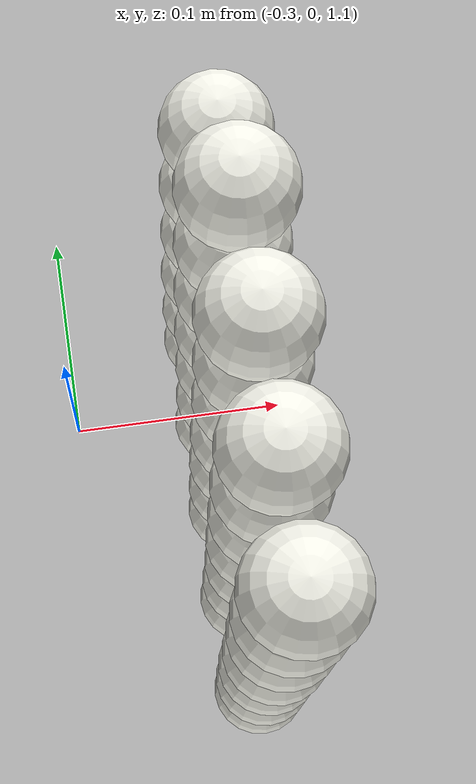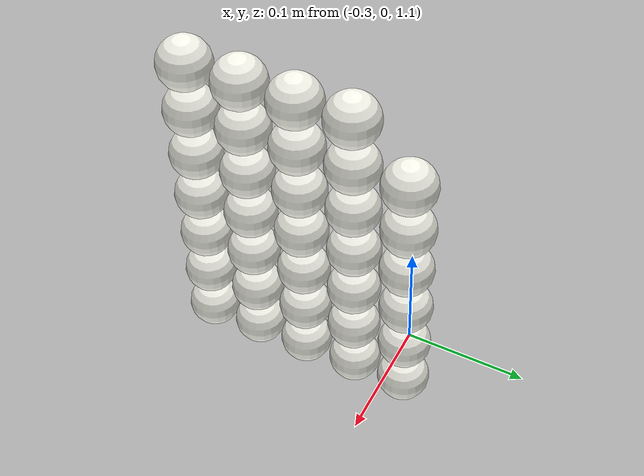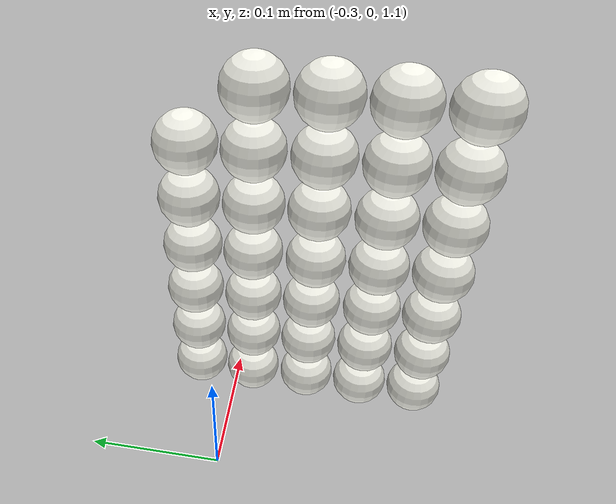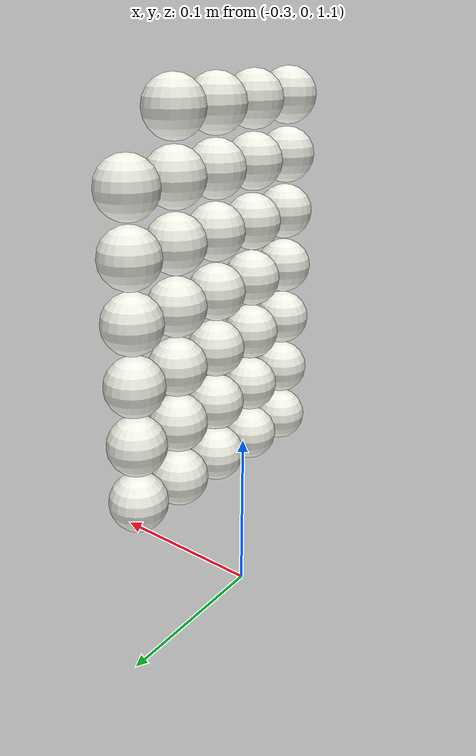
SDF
<sdf version="1.8">
 <world name="physical_100_dt5ms_diagnostic">
  <model name="ground">
   <static>true</static>
   <link name="ground_link">
    <collision name="floor">
     <geometry><plane><normal>0 0 1</normal><size>20 20</size></plane></geometry>
    </collision>
    <visual name="floor_visual">
     <geometry><plane><normal>0 0 1</normal><size>20 20</size></plane></geometry>
     <material><ambient>0.65 0.67 0.7 1</ambient><diffuse>0.65 0.67 0.7 1</diffuse></material>
    </visual>
   </link>
  </model>
  <model name="inventory_ball_001">
   <static>false</static>
   <pose>-0.23351634392092527 -0.14228499354686641 1.1430650175910217 0 0 0</pose>
   <link name="ball_link">
    <inertial>
     <mass>0.0027000000000000001</mass>
     <inertia>
      <ixx>7.1999999999999999e-07</ixx>
      <iyy>7.1999999999999999e-07</iyy>
      <izz>7.1999999999999999e-07</izz>
      <ixy>0</ixy>
      <ixz>0</ixz>
      <iyz>0</iyz>
     </inertia>
    </inertial>
    <collision name="ball_collision">
     <geometry><sphere><radius>0.02</radius></sphere></geometry>
     <surface>
      <friction><ode><mu>0.3</mu><mu2>0.3</mu2></ode></friction>
      <bounce><restitution_coefficient>0.8</restitution_coefficient><threshold>0.01</threshold></bounce>
     </surface>
    </collision>
    <visual name="ball_visual">
     <geometry><sphere><radius>0.02</radius></sphere></geometry>
     <material><ambient>0.96 0.96 0.92 1</ambient><diffuse>0.96 0.96 0.92 1</diffuse></material>
    </visual>
   </link>
  </model>
  <model name="inventory_ball_004">
   <static>false</static>
   <pose>-0.23388212166833716 -0.10056881721511786 1.1432032131728622 0 0 0</pose>
   <link name="ball_link">
    <inertial>
     <mass>0.0027000000000000001</mass>
     <inertia>
      <ixx>7.1999999999999999e-07</ixx>
      <iyy>7.1999999999999999e-07</iyy>
      <izz>7.1999999999999999e-07</izz>
      <ixy>0</ixy>
      <ixz>0</ixz>
      <iyz>0</iyz>
     </inertia>
    </inertial>
    <collision name="ball_collision">
     <geometry><sphere><radius>0.02</radius></sphere></geometry>
     <surface>
      <friction><ode><mu>0.3</mu><mu2>0.3</mu2></ode></friction>
      <bounce><restitution_coefficient>0.8</restitution_coefficient><threshold>0.01</threshold></bounce>
     </surface>
    </collision>
    <visual name="ball_visual">
     <geometry><sphere><radius>0.02</radius></sphere></geometry>
     <material><ambient>0.96 0.96 0.92 1</ambient><diffuse>0.96 0.96 0.92 1</diffuse></material>
    </visual>
   </link>
  </model>
  <model name="inventory_ball_007">
   <static>false</static>
   <pose>-0.23341434172599332 -0.059096100744193171 1.1433834915510999 0 0 0</pose>
   <link name="ball_link">
    <inertial>
     <mass>0.0027000000000000001</mass>
     <inertia>
      <ixx>7.1999999999999999e-07</ixx>
      <iyy>7.1999999999999999e-07</iyy>
      <izz>7.1999999999999999e-07</izz>
      <ixy>0</ixy>
      <ixz>0</ixz>
      <iyz>0</iyz>
     </inertia>
    </inertial>
    <collision name="ball_collision">
     <geometry><sphere><radius>0.02</radius></sphere></geometry>
     <surface>
      <friction><ode><mu>0.3</mu><mu2>0.3</mu2></ode></friction>
      <bounce><restitution_coefficient>0.8</restitution_coefficient><threshold>0.01</threshold></bounce>
     </surface>
    </collision>
    <visual name="ball_visual">
     <geometry><sphere><radius>0.02</radius></sphere></geometry>
     <material><ambient>0.96 0.96 0.92 1</ambient><diffuse>0.96 0.96 0.92 1</diffuse></material>
    </visual>
   </link>
  </model>
  <model name="inventory_ball_010">
   <static>false</static>
   <pose>-0.23384197017389993 -0.016991503380191519 1.1432622356188205 0 0 0</pose>
   <link name="ball_link">
    <inertial>
     <mass>0.0027000000000000001</mass>
     <inertia>
      <ixx>7.1999999999999999e-07</ixx>
      <iyy>7.1999999999999999e-07</iyy>
      <izz>7.1999999999999999e-07</izz>
      <ixy>0</ixy>
      <ixz>0</ixz>
      <iyz>0</iyz>
     </inertia>
    </inertial>
    <collision name="ball_collision">
     <geometry><sphere><radius>0.02</radius></sphere></geometry>
     <surface>
      <friction><ode><mu>0.3</mu><mu2>0.3</mu2></ode></friction>
      <bounce><restitution_coefficient>0.8</restitution_coefficient><threshold>0.01</threshold></bounce>
     </surface>
    </collision>
    <visual name="ball_visual">
     <geometry><sphere><radius>0.02</radius></sphere></geometry>
     <material><ambient>0.96 0.96 0.92 1</ambient><diffuse>0.96 0.96 0.92 1</diffuse></material>
    </visual>
   </link>
  </model>
  <model name="inventory_ball_013">
   <static>false</static>
   <pose>-0.2334023572014482 0.024471111851418554 1.1434170241401866 0 0 0</pose>
   <link name="ball_link">
    <inertial>
     <mass>0.0027000000000000001</mass>
     <inertia>
      <ixx>7.1999999999999999e-07</ixx>
      <iyy>7.1999999999999999e-07</iyy>
      <izz>7.1999999999999999e-07</izz>
      <ixy>0</ixy>
      <ixz>0</ixz>
      <iyz>0</iyz>
     </inertia>
    </inertial>
    <collision name="ball_collision">
     <geometry><sphere><radius>0.02</radius></sphere></geometry>
     <surface>
      <friction><ode><mu>0.3</mu><mu2>0.3</mu2></ode></friction>
      <bounce><restitution_coefficient>0.8</restitution_coefficient><threshold>0.01</threshold></bounce>
     </surface>
    </collision>
    <visual name="ball_visual">
     <geometry><sphere><radius>0.02</radius></sphere></geometry>
     <material><ambient>0.96 0.96 0.92 1</ambient><diffuse>0.96 0.96 0.92 1</diffuse></material>
    </visual>
   </link>
  </model>
  <model name="inventory_ball_016">
   <static>false</static>
   <pose>-0.23376032546818337 -0.14223939914235417 1.1846667841618663 0 0 0</pose>
   <link name="ball_link">
    <inertial>
     <mass>0.0027000000000000001</mass>
     <inertia>
      <ixx>7.1999999999999999e-07</ixx>
      <iyy>7.1999999999999999e-07</iyy>
      <izz>7.1999999999999999e-07</izz>
      <ixy>0</ixy>
      <ixz>0</ixz>
      <iyz>0</iyz>
     </inertia>
    </inertial>
    <collision name="ball_collision">
     <geometry><sphere><radius>0.02</radius></sphere></geometry>
     <surface>
      <friction><ode><mu>0.3</mu><mu2>0.3</mu2></ode></friction>
      <bounce><restitution_coefficient>0.8</restitution_coefficient><threshold>0.01</threshold></bounce>
     </surface>
    </collision>
    <visual name="ball_visual">
     <geometry><sphere><radius>0.02</radius></sphere></geometry>
     <material><ambient>0.96 0.96 0.92 1</ambient><diffuse>0.96 0.96 0.92 1</diffuse></material>
    </visual>
   </link>
  </model>
  <model name="inventory_ball_019">
   <static>false</static>
   <pose>-0.23351117876885205 -0.10033452139659982 1.1846026831889191 0 0 0</pose>
   <link name="ball_link">
    <inertial>
     <mass>0.0027000000000000001</mass>
     <inertia>
      <ixx>7.1999999999999999e-07</ixx>
      <iyy>7.1999999999999999e-07</iyy>
      <izz>7.1999999999999999e-07</izz>
      <ixy>0</ixy>
      <ixz>0</ixz>
      <iyz>0</iyz>
     </inertia>
    </inertial>
    <collision name="ball_collision">
     <geometry><sphere><radius>0.02</radius></sphere></geometry>
     <surface>
      <friction><ode><mu>0.3</mu><mu2>0.3</mu2></ode></friction>
      <bounce><restitution_coefficient>0.8</restitution_coefficient><threshold>0.01</threshold></bounce>
     </surface>
    </collision>
    <visual name="ball_visual">
     <geometry><sphere><radius>0.02</radius></sphere></geometry>
     <material><ambient>0.96 0.96 0.92 1</ambient><diffuse>0.96 0.96 0.92 1</diffuse></material>
    </visual>
   </link>
  </model>
  <model name="inventory_ball_022">
   <static>false</static>
   <pose>-0.23348923144940609 -0.058594288847886117 1.184965599946928 0 0 0</pose>
   <link name="ball_link">
    <inertial>
     <mass>0.0027000000000000001</mass>
     <inertia>
      <ixx>7.1999999999999999e-07</ixx>
      <iyy>7.1999999999999999e-07</iyy>
      <izz>7.1999999999999999e-07</izz>
      <ixy>0</ixy>
      <ixz>0</ixz>
      <iyz>0</iyz>
     </inertia>
    </inertial>
    <collision name="ball_collision">
     <geometry><sphere><radius>0.02</radius></sphere></geometry>
     <surface>
      <friction><ode><mu>0.3</mu><mu2>0.3</mu2></ode></friction>
      <bounce><restitution_coefficient>0.8</restitution_coefficient><threshold>0.01</threshold></bounce>
     </surface>
    </collision>
    <visual name="ball_visual">
     <geometry><sphere><radius>0.02</radius></sphere></geometry>
     <material><ambient>0.96 0.96 0.92 1</ambient><diffuse>0.96 0.96 0.92 1</diffuse></material>
    </visual>
   </link>
  </model>
  <model name="inventory_ball_025">
   <static>false</static>
   <pose>-0.2333741794241164 -0.017311193271520905 1.1848932631991773 0 0 0</pose>
   <link name="ball_link">
    <inertial>
     <mass>0.0027000000000000001</mass>
     <inertia>
      <ixx>7.1999999999999999e-07</ixx>
      <iyy>7.1999999999999999e-07</iyy>
      <izz>7.1999999999999999e-07</izz>
      <ixy>0</ixy>
      <ixz>0</ixz>
      <iyz>0</iyz>
     </inertia>
    </inertial>
    <collision name="ball_collision">
     <geometry><sphere><radius>0.02</radius></sphere></geometry>
     <surface>
      <friction><ode><mu>0.3</mu><mu2>0.3</mu2></ode></friction>
      <bounce><restitution_coefficient>0.8</restitution_coefficient><threshold>0.01</threshold></bounce>
     </surface>
    </collision>
    <visual name="ball_visual">
     <geometry><sphere><radius>0.02</radius></sphere></geometry>
     <material><ambient>0.96 0.96 0.92 1</ambient><diffuse>0.96 0.96 0.92 1</diffuse></material>
    </visual>
   </link>
  </model>
  <model name="inventory_ball_028">
   <static>false</static>
   <pose>-0.23374235503488625 0.024450751594134131 1.1850386937301618 0 0 0</pose>
   <link name="ball_link">
    <inertial>
     <mass>0.0027000000000000001</mass>
     <inertia>
      <ixx>7.1999999999999999e-07</ixx>
      <iyy>7.1999999999999999e-07</iyy>
      <izz>7.1999999999999999e-07</izz>
      <ixy>0</ixy>
      <ixz>0</ixz>
      <iyz>0</iyz>
     </inertia>
    </inertial>
    <collision name="ball_collision">
     <geometry><sphere><radius>0.02</radius></sphere></geometry>
     <surface>
      <friction><ode><mu>0.3</mu><mu2>0.3</mu2></ode></friction>
      <bounce><restitution_coefficient>0.8</restitution_coefficient><threshold>0.01</threshold></bounce>
     </surface>
    </collision>
    <visual name="ball_visual">
     <geometry><sphere><radius>0.02</radius></sphere></geometry>
     <material><ambient>0.96 0.96 0.92 1</ambient><diffuse>0.96 0.96 0.92 1</diffuse></material>
    </visual>
   </link>
  </model>
  <model name="inventory_ball_031">
   <static>false</static>
   <pose>-0.2338342105217896 -0.14192353237497815 1.226575247618618 0 0 0</pose>
   <link name="ball_link">
    <inertial>
     <mass>0.0027000000000000001</mass>
     <inertia>
      <ixx>7.1999999999999999e-07</ixx>
      <iyy>7.1999999999999999e-07</iyy>
      <izz>7.1999999999999999e-07</izz>
      <ixy>0</ixy>
      <ixz>0</ixz>
      <iyz>0</iyz>
     </inertia>
    </inertial>
    <collision name="ball_collision">
     <geometry><sphere><radius>0.02</radius></sphere></geometry>
     <surface>
      <friction><ode><mu>0.3</mu><mu2>0.3</mu2></ode></friction>
      <bounce><restitution_coefficient>0.8</restitution_coefficient><threshold>0.01</threshold></bounce>
     </surface>
    </collision>
    <visual name="ball_visual">
     <geometry><sphere><radius>0.02</radius></sphere></geometry>
     <material><ambient>0.96 0.96 0.92 1</ambient><diffuse>0.96 0.96 0.92 1</diffuse></material>
    </visual>
   </link>
  </model>
  <model name="inventory_ball_034">
   <static>false</static>
   <pose>-0.23338353217865931 -0.10069311138683433 1.2265324330916163 0 0 0</pose>
   <link name="ball_link">
    <inertial>
     <mass>0.0027000000000000001</mass>
     <inertia>
      <ixx>7.1999999999999999e-07</ixx>
      <iyy>7.1999999999999999e-07</iyy>
      <izz>7.1999999999999999e-07</izz>
      <ixy>0</ixy>
      <ixz>0</ixz>
      <iyz>0</iyz>
     </inertia>
    </inertial>
    <collision name="ball_collision">
     <geometry><sphere><radius>0.02</radius></sphere></geometry>
     <surface>
      <friction><ode><mu>0.3</mu><mu2>0.3</mu2></ode></friction>
      <bounce><restitution_coefficient>0.8</restitution_coefficient><threshold>0.01</threshold></bounce>
     </surface>
    </collision>
    <visual name="ball_visual">
     <geometry><sphere><radius>0.02</radius></sphere></geometry>
     <material><ambient>0.96 0.96 0.92 1</ambient><diffuse>0.96 0.96 0.92 1</diffuse></material>
    </visual>
   </link>
  </model>
  <model name="inventory_ball_037">
   <static>false</static>
   <pose>-0.23362776577620248 -0.058527710443487355 1.2266255117642271 0 0 0</pose>
   <link name="ball_link">
    <inertial>
     <mass>0.0027000000000000001</mass>
     <inertia>
      <ixx>7.1999999999999999e-07</ixx>
      <iyy>7.1999999999999999e-07</iyy>
      <izz>7.1999999999999999e-07</izz>
      <ixy>0</ixy>
      <ixz>0</ixz>
      <iyz>0</iyz>
     </inertia>
    </inertial>
    <collision name="ball_collision">
     <geometry><sphere><radius>0.02</radius></sphere></geometry>
     <surface>
      <friction><ode><mu>0.3</mu><mu2>0.3</mu2></ode></friction>
      <bounce><restitution_coefficient>0.8</restitution_coefficient><threshold>0.01</threshold></bounce>
     </surface>
    </collision>
    <visual name="ball_visual">
     <geometry><sphere><radius>0.02</radius></sphere></geometry>
     <material><ambient>0.96 0.96 0.92 1</ambient><diffuse>0.96 0.96 0.92 1</diffuse></material>
    </visual>
   </link>
  </model>
  <model name="inventory_ball_040">
   <static>false</static>
   <pose>-0.2335166303030804 -0.017134617873137088 1.2261917035611298 0 0 0</pose>
   <link name="ball_link">
    <inertial>
     <mass>0.0027000000000000001</mass>
     <inertia>
      <ixx>7.1999999999999999e-07</ixx>
      <iyy>7.1999999999999999e-07</iyy>
      <izz>7.1999999999999999e-07</izz>
      <ixy>0</ixy>
      <ixz>0</ixz>
      <iyz>0</iyz>
     </inertia>
    </inertial>
    <collision name="ball_collision">
     <geometry><sphere><radius>0.02</radius></sphere></geometry>
     <surface>
      <friction><ode><mu>0.3</mu><mu2>0.3</mu2></ode></friction>
      <bounce><restitution_coefficient>0.8</restitution_coefficient><threshold>0.01</threshold></bounce>
     </surface>
    </collision>
    <visual name="ball_visual">
     <geometry><sphere><radius>0.02</radius></sphere></geometry>
     <material><ambient>0.96 0.96 0.92 1</ambient><diffuse>0.96 0.96 0.92 1</diffuse></material>
    </visual>
   </link>
  </model>
  <model name="inventory_ball_043">
   <static>false</static>
   <pose>-0.23388831395456849 0.024657459169758776 1.2266272331266941 0 0 0</pose>
   <link name="ball_link">
    <inertial>
     <mass>0.0027000000000000001</mass>
     <inertia>
      <ixx>7.1999999999999999e-07</ixx>
      <iyy>7.1999999999999999e-07</iyy>
      <izz>7.1999999999999999e-07</izz>
      <ixy>0</ixy>
      <ixz>0</ixz>
      <iyz>0</iyz>
     </inertia>
    </inertial>
    <collision name="ball_collision">
     <geometry><sphere><radius>0.02</radius></sphere></geometry>
     <surface>
      <friction><ode><mu>0.3</mu><mu2>0.3</mu2></ode></friction>
      <bounce><restitution_coefficient>0.8</restitution_coefficient><threshold>0.01</threshold></bounce>
     </surface>
    </collision>
    <visual name="ball_visual">
     <geometry><sphere><radius>0.02</radius></sphere></geometry>
     <material><ambient>0.96 0.96 0.92 1</ambient><diffuse>0.96 0.96 0.92 1</diffuse></material>
    </visual>
   </link>
  </model>
  <model name="inventory_ball_046">
   <static>false</static>
   <pose>-0.23360840572201003 -0.14225847248891899 1.2681563612991547 0 0 0</pose>
   <link name="ball_link">
    <inertial>
     <mass>0.0027000000000000001</mass>
     <inertia>
      <ixx>7.1999999999999999e-07</ixx>
      <iyy>7.1999999999999999e-07</iyy>
      <izz>7.1999999999999999e-07</izz>
      <ixy>0</ixy>
      <ixz>0</ixz>
      <iyz>0</iyz>
     </inertia>
    </inertial>
    <collision name="ball_collision">
     <geometry><sphere><radius>0.02</radius></sphere></geometry>
     <surface>
      <friction><ode><mu>0.3</mu><mu2>0.3</mu2></ode></friction>
      <bounce><restitution_coefficient>0.8</restitution_coefficient><threshold>0.01</threshold></bounce>
     </surface>
    </collision>
    <visual name="ball_visual">
     <geometry><sphere><radius>0.02</radius></sphere></geometry>
     <material><ambient>0.96 0.96 0.92 1</ambient><diffuse>0.96 0.96 0.92 1</diffuse></material>
    </visual>
   </link>
  </model>
  <model name="inventory_ball_049">
   <static>false</static>
   <pose>-0.23364611723587947 -0.10057292107673477 1.268023577653268 0 0 0</pose>
   <link name="ball_link">
    <inertial>
     <mass>0.0027000000000000001</mass>
     <inertia>
      <ixx>7.1999999999999999e-07</ixx>
      <iyy>7.1999999999999999e-07</iyy>
      <izz>7.1999999999999999e-07</izz>
      <ixy>0</ixy>
      <ixz>0</ixz>
      <iyz>0</iyz>
     </inertia>
    </inertial>
    <collision name="ball_collision">
     <geometry><sphere><radius>0.02</radius></sphere></geometry>
     <surface>
      <friction><ode><mu>0.3</mu><mu2>0.3</mu2></ode></friction>
      <bounce><restitution_coefficient>0.8</restitution_coefficient><threshold>0.01</threshold></bounce>
     </surface>
    </collision>
    <visual name="ball_visual">
     <geometry><sphere><radius>0.02</radius></sphere></geometry>
     <material><ambient>0.96 0.96 0.92 1</ambient><diffuse>0.96 0.96 0.92 1</diffuse></material>
    </visual>
   </link>
  </model>
  <model name="inventory_ball_052">
   <static>false</static>
   <pose>-0.23358945449537866 -0.059027397482479045 1.2678348184022192 0 0 0</pose>
   <link name="ball_link">
    <inertial>
     <mass>0.0027000000000000001</mass>
     <inertia>
      <ixx>7.1999999999999999e-07</ixx>
      <iyy>7.1999999999999999e-07</iyy>
      <izz>7.1999999999999999e-07</izz>
      <ixy>0</ixy>
      <ixz>0</ixz>
      <iyz>0</iyz>
     </inertia>
    </inertial>
    <collision name="ball_collision">
     <geometry><sphere><radius>0.02</radius></sphere></geometry>
     <surface>
      <friction><ode><mu>0.3</mu><mu2>0.3</mu2></ode></friction>
      <bounce><restitution_coefficient>0.8</restitution_coefficient><threshold>0.01</threshold></bounce>
     </surface>
    </collision>
    <visual name="ball_visual">
     <geometry><sphere><radius>0.02</radius></sphere></geometry>
     <material><ambient>0.96 0.96 0.92 1</ambient><diffuse>0.96 0.96 0.92 1</diffuse></material>
    </visual>
   </link>
  </model>
  <model name="inventory_ball_055">
   <static>false</static>
   <pose>-0.2337626349297133 -0.016956747992196316 1.2682157812401524 0 0 0</pose>
   <link name="ball_link">
    <inertial>
     <mass>0.0027000000000000001</mass>
     <inertia>
      <ixx>7.1999999999999999e-07</ixx>
      <iyy>7.1999999999999999e-07</iyy>
      <izz>7.1999999999999999e-07</izz>
      <ixy>0</ixy>
      <ixz>0</ixz>
      <iyz>0</iyz>
     </inertia>
    </inertial>
    <collision name="ball_collision">
     <geometry><sphere><radius>0.02</radius></sphere></geometry>
     <surface>
      <friction><ode><mu>0.3</mu><mu2>0.3</mu2></ode></friction>
      <bounce><restitution_coefficient>0.8</restitution_coefficient><threshold>0.01</threshold></bounce>
     </surface>
    </collision>
    <visual name="ball_visual">
     <geometry><sphere><radius>0.02</radius></sphere></geometry>
     <material><ambient>0.96 0.96 0.92 1</ambient><diffuse>0.96 0.96 0.92 1</diffuse></material>
    </visual>
   </link>
  </model>
  <model name="inventory_ball_058">
   <static>false</static>
   <pose>-0.23355737414400482 0.024383602615787082 1.2681707716545747 0 0 0</pose>
   <link name="ball_link">
    <inertial>
     <mass>0.0027000000000000001</mass>
     <inertia>
      <ixx>7.1999999999999999e-07</ixx>
      <iyy>7.1999999999999999e-07</iyy>
      <izz>7.1999999999999999e-07</izz>
      <ixy>0</ixy>
      <ixz>0</ixz>
      <iyz>0</iyz>
     </inertia>
    </inertial>
    <collision name="ball_collision">
     <geometry><sphere><radius>0.02</radius></sphere></geometry>
     <surface>
      <friction><ode><mu>0.3</mu><mu2>0.3</mu2></ode></friction>
      <bounce><restitution_coefficient>0.8</restitution_coefficient><threshold>0.01</threshold></bounce>
     </surface>
    </collision>
    <visual name="ball_visual">
     <geometry><sphere><radius>0.02</radius></sphere></geometry>
     <material><ambient>0.96 0.96 0.92 1</ambient><diffuse>0.96 0.96 0.92 1</diffuse></material>
    </visual>
   </link>
  </model>
  <model name="inventory_ball_061">
   <static>false</static>
   <pose>-0.2334625544903241 -0.14189598127162403 1.3098904991268199 0 0 0</pose>
   <link name="ball_link">
    <inertial>
     <mass>0.0027000000000000001</mass>
     <inertia>
      <ixx>7.1999999999999999e-07</ixx>
      <iyy>7.1999999999999999e-07</iyy>
      <izz>7.1999999999999999e-07</izz>
      <ixy>0</ixy>
      <ixz>0</ixz>
      <iyz>0</iyz>
     </inertia>
    </inertial>
    <collision name="ball_collision">
     <geometry><sphere><radius>0.02</radius></sphere></geometry>
     <surface>
      <friction><ode><mu>0.3</mu><mu2>0.3</mu2></ode></friction>
      <bounce><restitution_coefficient>0.8</restitution_coefficient><threshold>0.01</threshold></bounce>
     </surface>
    </collision>
    <visual name="ball_visual">
     <geometry><sphere><radius>0.02</radius></sphere></geometry>
     <material><ambient>0.96 0.96 0.92 1</ambient><diffuse>0.96 0.96 0.92 1</diffuse></material>
    </visual>
   </link>
  </model>
  <model name="inventory_ball_064">
   <static>false</static>
   <pose>-0.23363083187130013 -0.10044687101609938 1.3094671270868006 0 0 0</pose>
   <link name="ball_link">
    <inertial>
     <mass>0.0027000000000000001</mass>
     <inertia>
      <ixx>7.1999999999999999e-07</ixx>
      <iyy>7.1999999999999999e-07</iyy>
      <izz>7.1999999999999999e-07</izz>
      <ixy>0</ixy>
      <ixz>0</ixz>
      <iyz>0</iyz>
     </inertia>
    </inertial>
    <collision name="ball_collision">
     <geometry><sphere><radius>0.02</radius></sphere></geometry>
     <surface>
      <friction><ode><mu>0.3</mu><mu2>0.3</mu2></ode></friction>
      <bounce><restitution_coefficient>0.8</restitution_coefficient><threshold>0.01</threshold></bounce>
     </surface>
    </collision>
    <visual name="ball_visual">
     <geometry><sphere><radius>0.02</radius></sphere></geometry>
     <material><ambient>0.96 0.96 0.92 1</ambient><diffuse>0.96 0.96 0.92 1</diffuse></material>
    </visual>
   </link>
  </model>
  <model name="inventory_ball_067">
   <static>false</static>
   <pose>-0.23330043051895236 -0.058598383448952032 1.3098813977543711 0 0 0</pose>
   <link name="ball_link">
    <inertial>
     <mass>0.0027000000000000001</mass>
     <inertia>
      <ixx>7.1999999999999999e-07</ixx>
      <iyy>7.1999999999999999e-07</iyy>
      <izz>7.1999999999999999e-07</izz>
      <ixy>0</ixy>
      <ixz>0</ixz>
      <iyz>0</iyz>
     </inertia>
    </inertial>
    <collision name="ball_collision">
     <geometry><sphere><radius>0.02</radius></sphere></geometry>
     <surface>
      <friction><ode><mu>0.3</mu><mu2>0.3</mu2></ode></friction>
      <bounce><restitution_coefficient>0.8</restitution_coefficient><threshold>0.01</threshold></bounce>
     </surface>
    </collision>
    <visual name="ball_visual">
     <geometry><sphere><radius>0.02</radius></sphere></geometry>
     <material><ambient>0.96 0.96 0.92 1</ambient><diffuse>0.96 0.96 0.92 1</diffuse></material>
    </visual>
   </link>
  </model>
  <model name="inventory_ball_070">
   <static>false</static>
   <pose>-0.23386481876001669 -0.017272616128613843 1.3098911853062682 0 0 0</pose>
   <link name="ball_link">
    <inertial>
     <mass>0.0027000000000000001</mass>
     <inertia>
      <ixx>7.1999999999999999e-07</ixx>
      <iyy>7.1999999999999999e-07</iyy>
      <izz>7.1999999999999999e-07</izz>
      <ixy>0</ixy>
      <ixz>0</ixz>
      <iyz>0</iyz>
     </inertia>
    </inertial>
    <collision name="ball_collision">
     <geometry><sphere><radius>0.02</radius></sphere></geometry>
     <surface>
      <friction><ode><mu>0.3</mu><mu2>0.3</mu2></ode></friction>
      <bounce><restitution_coefficient>0.8</restitution_coefficient><threshold>0.01</threshold></bounce>
     </surface>
    </collision>
    <visual name="ball_visual">
     <geometry><sphere><radius>0.02</radius></sphere></geometry>
     <material><ambient>0.96 0.96 0.92 1</ambient><diffuse>0.96 0.96 0.92 1</diffuse></material>
    </visual>
   </link>
  </model>
  <model name="inventory_ball_073">
   <static>false</static>
   <pose>-0.23356653900595664 0.024531044965177801 1.3093928780951647 0 0 0</pose>
   <link name="ball_link">
    <inertial>
     <mass>0.0027000000000000001</mass>
     <inertia>
      <ixx>7.1999999999999999e-07</ixx>
      <iyy>7.1999999999999999e-07</iyy>
      <izz>7.1999999999999999e-07</izz>
      <ixy>0</ixy>
      <ixz>0</ixz>
      <iyz>0</iyz>
     </inertia>
    </inertial>
    <collision name="ball_collision">
     <geometry><sphere><radius>0.02</radius></sphere></geometry>
     <surface>
      <friction><ode><mu>0.3</mu><mu2>0.3</mu2></ode></friction>
      <bounce><restitution_coefficient>0.8</restitution_coefficient><threshold>0.01</threshold></bounce>
     </surface>
    </collision>
    <visual name="ball_visual">
     <geometry><sphere><radius>0.02</radius></sphere></geometry>
     <material><ambient>0.96 0.96 0.92 1</ambient><diffuse>0.96 0.96 0.92 1</diffuse></material>
    </visual>
   </link>
  </model>
  <model name="inventory_ball_076">
   <static>false</static>
   <pose>-0.23354949344332462 -0.14199828977024831 1.3514116319352292 0 0 0</pose>
   <link name="ball_link">
    <inertial>
     <mass>0.0027000000000000001</mass>
     <inertia>
      <ixx>7.1999999999999999e-07</ixx>
      <iyy>7.1999999999999999e-07</iyy>
      <izz>7.1999999999999999e-07</izz>
      <ixy>0</ixy>
      <ixz>0</ixz>
      <iyz>0</iyz>
     </inertia>
    </inertial>
    <collision name="ball_collision">
     <geometry><sphere><radius>0.02</radius></sphere></geometry>
     <surface>
      <friction><ode><mu>0.3</mu><mu2>0.3</mu2></ode></friction>
      <bounce><restitution_coefficient>0.8</restitution_coefficient><threshold>0.01</threshold></bounce>
     </surface>
    </collision>
    <visual name="ball_visual">
     <geometry><sphere><radius>0.02</radius></sphere></geometry>
     <material><ambient>0.96 0.96 0.92 1</ambient><diffuse>0.96 0.96 0.92 1</diffuse></material>
    </visual>
   </link>
  </model>
  <model name="inventory_ball_079">
   <static>false</static>
   <pose>-0.23375887766299944 -0.10062806803163174 1.3514341723884777 0 0 0</pose>
   <link name="ball_link">
    <inertial>
     <mass>0.0027000000000000001</mass>
     <inertia>
      <ixx>7.1999999999999999e-07</ixx>
      <iyy>7.1999999999999999e-07</iyy>
      <izz>7.1999999999999999e-07</izz>
      <ixy>0</ixy>
      <ixz>0</ixz>
      <iyz>0</iyz>
     </inertia>
    </inertial>
    <collision name="ball_collision">
     <geometry><sphere><radius>0.02</radius></sphere></geometry>
     <surface>
      <friction><ode><mu>0.3</mu><mu2>0.3</mu2></ode></friction>
      <bounce><restitution_coefficient>0.8</restitution_coefficient><threshold>0.01</threshold></bounce>
     </surface>
    </collision>
    <visual name="ball_visual">
     <geometry><sphere><radius>0.02</radius></sphere></geometry>
     <material><ambient>0.96 0.96 0.92 1</ambient><diffuse>0.96 0.96 0.92 1</diffuse></material>
    </visual>
   </link>
  </model>
  <model name="inventory_ball_082">
   <static>false</static>
   <pose>-0.23333917624535813 -0.058977444480345885 1.3513297150804737 0 0 0</pose>
   <link name="ball_link">
    <inertial>
     <mass>0.0027000000000000001</mass>
     <inertia>
      <ixx>7.1999999999999999e-07</ixx>
      <iyy>7.1999999999999999e-07</iyy>
      <izz>7.1999999999999999e-07</izz>
      <ixy>0</ixy>
      <ixz>0</ixz>
      <iyz>0</iyz>
     </inertia>
    </inertial>
    <collision name="ball_collision">
     <geometry><sphere><radius>0.02</radius></sphere></geometry>
     <surface>
      <friction><ode><mu>0.3</mu><mu2>0.3</mu2></ode></friction>
      <bounce><restitution_coefficient>0.8</restitution_coefficient><threshold>0.01</threshold></bounce>
     </surface>
    </collision>
    <visual name="ball_visual">
     <geometry><sphere><radius>0.02</radius></sphere></geometry>
     <material><ambient>0.96 0.96 0.92 1</ambient><diffuse>0.96 0.96 0.92 1</diffuse></material>
    </visual>
   </link>
  </model>
  <model name="inventory_ball_085">
   <static>false</static>
   <pose>-0.23385647413130412 -0.017225028686428841 1.3514990726645129 0 0 0</pose>
   <link name="ball_link">
    <inertial>
     <mass>0.0027000000000000001</mass>
     <inertia>
      <ixx>7.1999999999999999e-07</ixx>
      <iyy>7.1999999999999999e-07</iyy>
      <izz>7.1999999999999999e-07</izz>
      <ixy>0</ixy>
      <ixz>0</ixz>
      <iyz>0</iyz>
     </inertia>
    </inertial>
    <collision name="ball_collision">
     <geometry><sphere><radius>0.02</radius></sphere></geometry>
     <surface>
      <friction><ode><mu>0.3</mu><mu2>0.3</mu2></ode></friction>
      <bounce><restitution_coefficient>0.8</restitution_coefficient><threshold>0.01</threshold></bounce>
     </surface>
    </collision>
    <visual name="ball_visual">
     <geometry><sphere><radius>0.02</radius></sphere></geometry>
     <material><ambient>0.96 0.96 0.92 1</ambient><diffuse>0.96 0.96 0.92 1</diffuse></material>
    </visual>
   </link>
  </model>
  <model name="inventory_ball_088">
   <static>false</static>
   <pose>-0.23337243785450928 0.024321716253243336 1.3509946480994146 0 0 0</pose>
   <link name="ball_link">
    <inertial>
     <mass>0.0027000000000000001</mass>
     <inertia>
      <ixx>7.1999999999999999e-07</ixx>
      <iyy>7.1999999999999999e-07</iyy>
      <izz>7.1999999999999999e-07</izz>
      <ixy>0</ixy>
      <ixz>0</ixz>
      <iyz>0</iyz>
     </inertia>
    </inertial>
    <collision name="ball_collision">
     <geometry><sphere><radius>0.02</radius></sphere></geometry>
     <surface>
      <friction><ode><mu>0.3</mu><mu2>0.3</mu2></ode></friction>
      <bounce><restitution_coefficient>0.8</restitution_coefficient><threshold>0.01</threshold></bounce>
     </surface>
    </collision>
    <visual name="ball_visual">
     <geometry><sphere><radius>0.02</radius></sphere></geometry>
     <material><ambient>0.96 0.96 0.92 1</ambient><diffuse>0.96 0.96 0.92 1</diffuse></material>
    </visual>
   </link>
  </model>
  <model name="inventory_ball_091">
   <static>false</static>
   <pose>-0.23340973751893074 -0.14212037274868003 1.39289803322898 0 0 0</pose>
   <link name="ball_link">
    <inertial>
     <mass>0.0027000000000000001</mass>
     <inertia>
      <ixx>7.1999999999999999e-07</ixx>
      <iyy>7.1999999999999999e-07</iyy>
      <izz>7.1999999999999999e-07</izz>
      <ixy>0</ixy>
      <ixz>0</ixz>
      <iyz>0</iyz>
     </inertia>
    </inertial>
    <collision name="ball_collision">
     <geometry><sphere><radius>0.02</radius></sphere></geometry>
     <surface>
      <friction><ode><mu>0.3</mu><mu2>0.3</mu2></ode></friction>
      <bounce><restitution_coefficient>0.8</restitution_coefficient><threshold>0.01</threshold></bounce>
     </surface>
    </collision>
    <visual name="ball_visual">
     <geometry><sphere><radius>0.02</radius></sphere></geometry>
     <material><ambient>0.96 0.96 0.92 1</ambient><diffuse>0.96 0.96 0.92 1</diffuse></material>
    </visual>
   </link>
  </model>
  <model name="inventory_ball_094">
   <static>false</static>
   <pose>-0.23353710210378187 -0.10026943268771674 1.3926221583873968 0 0 0</pose>
   <link name="ball_link">
    <inertial>
     <mass>0.0027000000000000001</mass>
     <inertia>
      <ixx>7.1999999999999999e-07</ixx>
      <iyy>7.1999999999999999e-07</iyy>
      <izz>7.1999999999999999e-07</izz>
      <ixy>0</ixy>
      <ixz>0</ixz>
      <iyz>0</iyz>
     </inertia>
    </inertial>
    <collision name="ball_collision">
     <geometry><sphere><radius>0.02</radius></sphere></geometry>
     <surface>
      <friction><ode><mu>0.3</mu><mu2>0.3</mu2></ode></friction>
      <bounce><restitution_coefficient>0.8</restitution_coefficient><threshold>0.01</threshold></bounce>
     </surface>
    </collision>
    <visual name="ball_visual">
     <geometry><sphere><radius>0.02</radius></sphere></geometry>
     <material><ambient>0.96 0.96 0.92 1</ambient><diffuse>0.96 0.96 0.92 1</diffuse></material>
    </visual>
   </link>
  </model>
  <model name="inventory_ball_097">
   <static>false</static>
   <pose>-0.23364585453646178 -0.058933991865616653 1.392502127413453 0 0 0</pose>
   <link name="ball_link">
    <inertial>
     <mass>0.0027000000000000001</mass>
     <inertia>
      <ixx>7.1999999999999999e-07</ixx>
      <iyy>7.1999999999999999e-07</iyy>
      <izz>7.1999999999999999e-07</izz>
      <ixy>0</ixy>
      <ixz>0</ixz>
      <iyz>0</iyz>
     </inertia>
    </inertial>
    <collision name="ball_collision">
     <geometry><sphere><radius>0.02</radius></sphere></geometry>
     <surface>
      <friction><ode><mu>0.3</mu><mu2>0.3</mu2></ode></friction>
      <bounce><restitution_coefficient>0.8</restitution_coefficient><threshold>0.01</threshold></bounce>
     </surface>
    </collision>
    <visual name="ball_visual">
     <geometry><sphere><radius>0.02</radius></sphere></geometry>
     <material><ambient>0.96 0.96 0.92 1</ambient><diffuse>0.96 0.96 0.92 1</diffuse></material>
    </visual>
   </link>
  </model>
  <model name="inventory_ball_100">
   <static>false</static>
   <pose>-0.23389419818023499 -0.017454853683955732 1.3930298638359804 0 0 0</pose>
   <link name="ball_link">
    <inertial>
     <mass>0.0027000000000000001</mass>
     <inertia>
      <ixx>7.1999999999999999e-07</ixx>
      <iyy>7.1999999999999999e-07</iyy>
      <izz>7.1999999999999999e-07</izz>
      <ixy>0</ixy>
      <ixz>0</ixz>
      <iyz>0</iyz>
     </inertia>
    </inertial>
    <collision name="ball_collision">
     <geometry><sphere><radius>0.02</radius></sphere></geometry>
     <surface>
      <friction><ode><mu>0.3</mu><mu2>0.3</mu2></ode></friction>
      <bounce><restitution_coefficient>0.8</restitution_coefficient><threshold>0.01</threshold></bounce>
     </surface>
    </collision>
    <visual name="ball_visual">
     <geometry><sphere><radius>0.02</radius></sphere></geometry>
     <material><ambient>0.96 0.96 0.92 1</ambient><diffuse>0.96 0.96 0.92 1</diffuse></material>
    </visual>
   </link>
  </model>
 </world>
</sdf>
